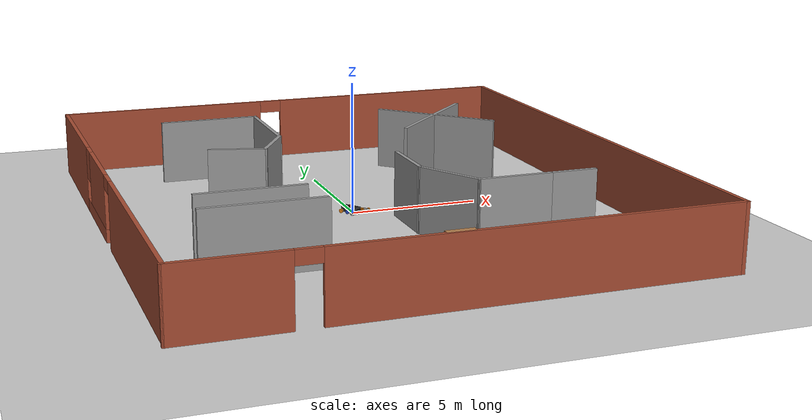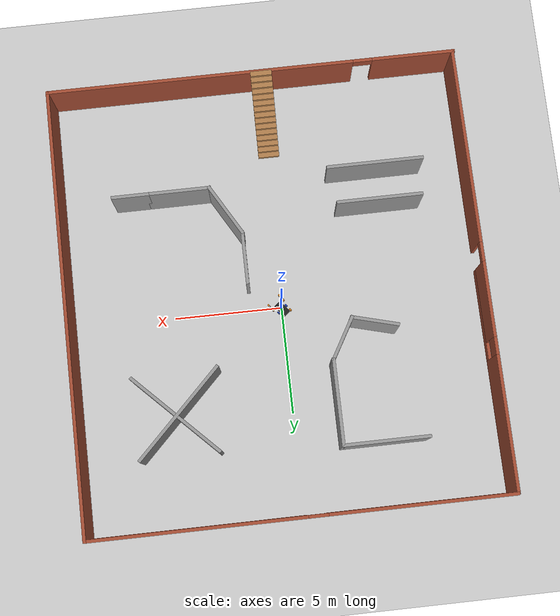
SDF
<sdf version="1.7">
 <world name="default">
  <light name="sun" type="directional">
   <pose>0 0 10 0 -0 0</pose>
   <diffuse>0.8 0.8 0.8 1</diffuse>
   <specular>0.2 0.2 0.2 1</specular>
   <attenuation>
    <range>1000</range>
    <constant>0.9</constant>
    <linear>0.01</linear>
    <quadratic>0.001</quadratic>
   </attenuation>
   <direction>-0.5 0.1 -0.9</direction>
   <spot><inner_angle>0</inner_angle><outer_angle>0</outer_angle><falloff>0</falloff></spot>
  </light>
  <model name="ground_plane">
   <static>1</static>
   <link name="link">
    <collision name="collision">
     <geometry><plane><normal>0 0 1</normal><size>100 100</size></plane></geometry>
     <surface><friction><ode><mu>100</mu><mu2>50</mu2></ode></friction></surface>
    </collision>
    <visual name="visual">
     <cast_shadows>0</cast_shadows>
     <geometry><plane><normal>0 0 1</normal><size>100 100</size></plane></geometry>
     <material>
      <script><uri>file://media/materials/scripts/gazebo.material</uri><name>Gazebo/Grey</name></script>
     </material>
    </visual>
   </link>
  </model>
  <gravity>0 0 -9.8</gravity>
  <magnetic_field>6e-06 2.3e-05 -4.2e-05</magnetic_field>
  <atmosphere type="adiabatic"/>
  <physics type="ode">
   <max_step_size>0.001</max_step_size>
   <real_time_factor>1</real_time_factor>
   <real_time_update_rate>1000</real_time_update_rate>
  </physics>
  <scene><ambient>0.4 0.4 0.4 1</ambient><background>0.7 0.7 0.7 1</background><shadows>1</shadows></scene>
  <spherical_coordinates>
   <surface_model>EARTH_WGS84</surface_model>
   <latitude_deg>0</latitude_deg>
   <longitude_deg>0</longitude_deg>
   <elevation>0</elevation>
   <heading_deg>0</heading_deg>
  </spherical_coordinates>
  <model name="hendbot">
   <link name="base_link">
    <inertial>
     <pose>-0.003669 -0 0.093543 0 -0 0</pose>
     <mass>441.909</mass>
     <inertia>
      <ixx>1.32404</ixx>
      <ixy>-1.29347e-07</ixy>
      <ixz>-0.00999781</ixz>
      <iyy>2.67863</iyy>
      <iyz>1.97052e-07</iyz>
      <izz>3.62614</izz>
     </inertia>
    </inertial>
    <collision name="base_link_fixed_joint_lump__hend_link_collision">
     <pose>-0.33246 0 0 0 -0 0</pose>
     <geometry><mesh><scale>1 1 1</scale><uri>model://hendbot/meshes/base_link.STL</uri></mesh></geometry>
    </collision>
    <collision name="base_link_fixed_joint_lump__LBW_Link_collision_1">
     <pose>-0.28246 0.215 0.035 1.5708 -1.1717 -3.14159</pose>
     <geometry><mesh><scale>1 1 1</scale><uri>model://hendbot/meshes/LBW_Link.STL</uri></mesh></geometry>
     <surface><friction><ode><mu>0.04</mu><mu2>0.04</mu2></ode></friction></surface>
    </collision>
    <collision name="base_link_fixed_joint_lump__LFW_Link_collision_2">
     <pose>0.28245 0.215 0.035103 1.5708 0.76776 3.14159</pose>
     <geometry><mesh><scale>1 1 1</scale><uri>model://hendbot/meshes/LFW_Link.STL</uri></mesh></geometry>
     <surface><friction><ode><mu>0.04</mu><mu2>0.04</mu2></ode></friction></surface>
    </collision>
    <collision name="base_link_fixed_joint_lump__RBW_Link_collision_3">
     <pose>-0.28246 -0.215 0.035 -1.5708 0.11175 -0</pose>
     <geometry><mesh><scale>1 1 1</scale><uri>model://hendbot/meshes/RBW_Link.STL</uri></mesh></geometry>
     <surface><friction><ode><mu>0.04</mu><mu2>0.04</mu2></ode></friction></surface>
    </collision>
    <collision name="base_link_fixed_joint_lump__RFW_Link_collision_4">
     <pose>0.28245 -0.215 0.035103 1.5708 0.34292 3.14159</pose>
     <geometry><mesh><scale>1 1 1</scale><uri>model://hendbot/meshes/RFW_Link.STL</uri></mesh></geometry>
     <surface><friction><ode><mu>0.04</mu><mu2>0.04</mu2></ode></friction></surface>
    </collision>
    <collision name="base_link_fixed_joint_lump__laser_frame_collision_5">
     <pose>-0.01246 0 0.22 0 -0 0</pose>
     <geometry><cylinder><length>0.06</length><radius>0.05</radius></cylinder></geometry>
    </collision>
    <visual name="base_link_fixed_joint_lump__hend_link_visual">
     <pose>-0.33246 0 0 0 -0 0</pose>
     <geometry><mesh><scale>1 1 1</scale><uri>model://hendbot/meshes/base_link.STL</uri></mesh></geometry>
     <material>
      <script><name>Gazebo/Black</name><uri>file://media/materials/scripts/gazebo.material</uri></script>
     </material>
    </visual>
    <visual name="base_link_fixed_joint_lump__LBW_Link_visual_1">
     <pose>-0.28246 0.215 0.035 1.5708 -1.1717 -3.14159</pose>
     <geometry><mesh><scale>1 1 1</scale><uri>model://hendbot/meshes/LBW_Link.STL</uri></mesh></geometry>
     <material>
      <script><name>Gazebo/Orange</name><uri>file://media/materials/scripts/gazebo.material</uri></script>
     </material>
    </visual>
    <visual name="base_link_fixed_joint_lump__LFW_Link_visual_2">
     <pose>0.28245 0.215 0.035103 1.5708 0.76776 3.14159</pose>
     <geometry><mesh><scale>1 1 1</scale><uri>model://hendbot/meshes/LFW_Link.STL</uri></mesh></geometry>
     <material>
      <script><name>Gazebo/Orange</name><uri>file://media/materials/scripts/gazebo.material</uri></script>
     </material>
    </visual>
    <visual name="base_link_fixed_joint_lump__RBW_Link_visual_3">
     <pose>-0.28246 -0.215 0.035 -1.5708 0.11175 -0</pose>
     <geometry><mesh><scale>1 1 1</scale><uri>model://hendbot/meshes/RBW_Link.STL</uri></mesh></geometry>
     <material>
      <script><name>Gazebo/Orange</name><uri>file://media/materials/scripts/gazebo.material</uri></script>
     </material>
    </visual>
    <visual name="base_link_fixed_joint_lump__RFW_Link_visual_4">
     <pose>0.28245 -0.215 0.035103 1.5708 0.34292 3.14159</pose>
     <geometry><mesh><scale>1 1 1</scale><uri>model://hendbot/meshes/RFW_Link.STL</uri></mesh></geometry>
     <material>
      <script><name>Gazebo/Orange</name><uri>file://media/materials/scripts/gazebo.material</uri></script>
     </material>
    </visual>
    <visual name="base_link_fixed_joint_lump__laser_frame_visual_5">
     <pose>-0.01246 0 0.22 0 -0 0</pose>
     <geometry><cylinder><length>0.06</length><radius>0.05</radius></cylinder></geometry>
     <material>
      <script><name>Gazebo/Red</name><uri>file://media/materials/scripts/gazebo.material</uri></script>
     </material>
    </visual>
    <sensor name="laser" type="ray">
     <visualize>0</visualize>
     <update_rate>10</update_rate>
     <ray>
      <scan>
       <horizontal>
        <samples>360</samples>
        <min_angle>-3.14</min_angle>
        <max_angle>3.14</max_angle>
        <resolution>1</resolution>
       </horizontal>
       <vertical><samples>1</samples><min_angle>0</min_angle><max_angle>0</max_angle></vertical>
      </scan>
      <range><min>0.1</min><max>12</max></range>
     </ray>
     <plugin name="laser_controller" filename="libgazebo_ros_ray_sensor.so">
      <ros><argument>~/out:=scan</argument></ros>
      <output_type>sensor_msgs/LaserScan</output_type>
      <frame_name>laser_frame</frame_name>
     </plugin>
     <pose>-0.01246 0 0.22 0 -0 0</pose>
    </sensor>
   </link>
   <joint name="WLBelt_Joint" type="revolute">
    <pose relative_to="base_link">4e-05 0.215 0.035052 1.5708 0.35384 3.14159</pose>
    <parent>base_link</parent>
    <child>WLBelt_Link</child>
    <axis>
     <xyz>0 0 1</xyz>
     <limit><effort>100</effort><velocity>100</velocity><lower>-1e+16</lower><upper>1e+16</upper></limit>
     <dynamics>
      <damping>0.1</damping>
      <friction>0.1</friction>
      <spring_reference>0</spring_reference>
      <spring_stiffness>0</spring_stiffness>
     </dynamics>
    </axis>
   </joint>
   <link name="WLBelt_Link">
    <pose relative_to="WLBelt_Joint">0 0 0 0 -0 0</pose>
    <inertial>
     <pose>6e-06 2e-06 0.03 0 -0 0</pose>
     <mass>2.8302</mass>
     <inertia>
      <ixx>0.00487432</ixx>
      <ixy>1.0842e-19</ixy>
      <ixz>-5.95761e-21</ixz>
      <iyy>0.00487432</iyy>
      <iyz>-3.72125e-22</iyz>
      <izz>0.00805052</izz>
     </inertia>
    </inertial>
    <collision name="WLBelt_Link_collision">
     <geometry><mesh><scale>1 1 1</scale><uri>model://hendbot/meshes/WLBelt_Link.STL</uri></mesh></geometry>
    </collision>
    <visual name="WLBelt_Link_visual">
     <geometry><mesh><scale>1 1 1</scale><uri>model://hendbot/meshes/WLBelt_Link.STL</uri></mesh></geometry>
     <material>
      <script><name>Gazebo/Blue</name><uri>file://media/materials/scripts/gazebo.material</uri></script>
     </material>
    </visual>
   </link>
   <joint name="WRBelt_Joint" type="revolute">
    <pose relative_to="base_link">4e-05 -0.215 0.035052 -1.5708 0.65732 0</pose>
    <parent>base_link</parent>
    <child>WRBelt_Link</child>
    <axis>
     <xyz>0 0 1</xyz>
     <limit><effort>100</effort><velocity>100</velocity><lower>-1e+16</lower><upper>1e+16</upper></limit>
     <dynamics>
      <damping>0.1</damping>
      <friction>0.1</friction>
      <spring_reference>0</spring_reference>
      <spring_stiffness>0</spring_stiffness>
     </dynamics>
    </axis>
   </joint>
   <link name="WRBelt_Link">
    <pose relative_to="WRBelt_Joint">0 0 0 0 -0 0</pose>
    <inertial>
     <pose>-5e-06 4e-06 -0.03 0 -0 0</pose>
     <mass>2.8302</mass>
     <inertia>
      <ixx>0.00487432</ixx>
      <ixy>2.1684e-19</ixy>
      <ixz>9.79617e-36</ixz>
      <iyy>0.00487432</iyy>
      <iyz>7.94184e-36</iyz>
      <izz>0.00805052</izz>
     </inertia>
    </inertial>
    <collision name="WRBelt_Link_collision">
     <geometry><mesh><scale>1 1 1</scale><uri>model://hendbot/meshes/WRBelt_Link.STL</uri></mesh></geometry>
    </collision>
    <visual name="WRBelt_Link_visual">
     <geometry><mesh><scale>1 1 1</scale><uri>model://hendbot/meshes/WRBelt_Link.STL</uri></mesh></geometry>
     <material>
      <script><name>Gazebo/Blue</name><uri>file://media/materials/scripts/gazebo.material</uri></script>
     </material>
    </visual>
   </link>
   <joint name="LFFW_Joint" type="revolute">
    <pose relative_to="base_link">0.28245 0.30998 0.035103 1.5708 -1.005 -3.14159</pose>
    <parent>base_link</parent>
    <child>LFFW_Link</child>
    <axis>
     <xyz>0 0 1</xyz>
     <limit><effort>100</effort><velocity>100</velocity><lower>-1e+16</lower><upper>1e+16</upper></limit>
     <dynamics>
      <damping>0.1</damping>
      <friction>0.1</friction>
      <spring_reference>0</spring_reference>
      <spring_stiffness>0</spring_stiffness>
     </dynamics>
    </axis>
   </joint>
   <link name="LFFW_Link">
    <pose relative_to="LFFW_Joint">0 0 0 0 -0 0</pose>
    <inertial>
     <pose>-0.016199 0.044173 0.030887 0 -0 0</pose>
     <mass>3.50118</mass>
     <inertia>
      <ixx>0.0402368</ixx>
      <ixy>0.0126939</ixy>
      <ixz>-6.84372e-05</ixz>
      <iyy>0.0103212</iyy>
      <iyz>0.00018326</iyz>
      <izz>0.0481955</izz>
     </inertia>
    </inertial>
    <collision name="LFFW_Link_collision">
     <geometry><mesh><scale>1 1 1</scale><uri>model://hendbot/meshes/LFFW_Link.STL</uri></mesh></geometry>
     <surface><friction><ode><mu>0.04</mu><mu2>0.04</mu2></ode></friction></surface>
    </collision>
    <collision name="LFFW_Link_fixed_joint_lump__LF_Link_collision_1">
     <pose>0 0 0 0 -0 1.91705</pose>
     <geometry><mesh><scale>1 1 1</scale><uri>model://hendbot/meshes/LF_Link.STL</uri></mesh></geometry>
    </collision>
    <collision name="LFFW_Link_fixed_joint_lump__LW_Link_collision_2">
     <pose>-0.103425 0.281385 0 0 0 -2.57584</pose>
     <geometry><mesh><scale>1 1 1</scale><uri>model://hendbot/meshes/LW_Link.STL</uri></mesh></geometry>
     <surface><friction><ode><mu>0.04</mu><mu2>0.04</mu2></ode></friction></surface>
    </collision>
    <visual name="LFFW_Link_visual">
     <geometry><mesh><scale>1 1 1</scale><uri>model://hendbot/meshes/LFFW_Link.STL</uri></mesh></geometry>
     <material>
      <script><name>Gazebo/Orange</name><uri>file://media/materials/scripts/gazebo.material</uri></script>
     </material>
    </visual>
    <visual name="LFFW_Link_fixed_joint_lump__LF_Link_visual_1">
     <pose>0 0 0 0 -0 1.91705</pose>
     <geometry><mesh><scale>1 1 1</scale><uri>model://hendbot/meshes/LF_Link.STL</uri></mesh></geometry>
    </visual>
    <visual name="LFFW_Link_fixed_joint_lump__LW_Link_visual_2">
     <pose>-0.103425 0.281385 0 0 0 -2.57584</pose>
     <geometry><mesh><scale>1 1 1</scale><uri>model://hendbot/meshes/LW_Link.STL</uri></mesh></geometry>
     <material>
      <script><name>Gazebo/Orange</name><uri>file://media/materials/scripts/gazebo.material</uri></script>
     </material>
    </visual>
   </link>
   <joint name="RFFW_Joint" type="revolute">
    <pose relative_to="base_link">0.28245 -0.31 0.035103 -1.5708 -0.76747 0</pose>
    <parent>base_link</parent>
    <child>RFFW_Link</child>
    <axis>
     <xyz>0 0 1</xyz>
     <limit><effort>100</effort><velocity>100</velocity><lower>-1e+16</lower><upper>1e+16</upper></limit>
     <dynamics>
      <damping>0.1</damping>
      <friction>0.1</friction>
      <spring_reference>0</spring_reference>
      <spring_stiffness>0</spring_stiffness>
     </dynamics>
    </axis>
   </joint>
   <link name="RFFW_Link">
    <pose relative_to="RFFW_Joint">0 0 0 0 -0 0</pose>
    <inertial>
     <pose>0.041307 0.022524 -0.030886 0 -0 0</pose>
     <mass>3.50118</mass>
     <inertia>
      <ixx>0.0146412</ixx>
      <ixy>-0.0164836</ixy>
      <ixz>-0.000172565</ixz>
      <iyy>0.0359161</iyy>
      <iyz>-9.27813e-05</iyz>
      <izz>0.0481951</izz>
     </inertia>
    </inertial>
    <collision name="RFFW_Link_collision">
     <geometry><mesh><scale>1 1 1</scale><uri>model://hendbot/meshes/RFFW_Link.STL</uri></mesh></geometry>
     <surface><friction><ode><mu>0.04</mu><mu2>0.04</mu2></ode></friction></surface>
    </collision>
    <collision name="RFFW_Link_fixed_joint_lump__RF_Link_collision_1">
     <pose>0 0.01 0 0 -0 0.504452</pose>
     <geometry><mesh><scale>1 1 1</scale><uri>model://hendbot/meshes/RF_Link.STL</uri></mesh></geometry>
    </collision>
    <collision name="RFFW_Link_fixed_joint_lump__RW_Link_collision_2">
     <pose>0.263308 0.143325 0 0 0 -0.803348</pose>
     <geometry><mesh><scale>1 1 1</scale><uri>model://hendbot/meshes/RW_Link.STL</uri></mesh></geometry>
     <surface><friction><ode><mu>0.04</mu><mu2>0.04</mu2></ode></friction></surface>
    </collision>
    <visual name="RFFW_Link_visual">
     <geometry><mesh><scale>1 1 1</scale><uri>model://hendbot/meshes/RFFW_Link.STL</uri></mesh></geometry>
     <material>
      <script><name>Gazebo/Orange</name><uri>file://media/materials/scripts/gazebo.material</uri></script>
     </material>
    </visual>
    <visual name="RFFW_Link_fixed_joint_lump__RF_Link_visual_1">
     <pose>0 0.01 0 0 -0 0.504452</pose>
     <geometry><mesh><scale>1 1 1</scale><uri>model://hendbot/meshes/RF_Link.STL</uri></mesh></geometry>
    </visual>
    <visual name="RFFW_Link_fixed_joint_lump__RW_Link_visual_2">
     <pose>0.263308 0.143325 0 0 0 -0.803348</pose>
     <geometry><mesh><scale>1 1 1</scale><uri>model://hendbot/meshes/RW_Link.STL</uri></mesh></geometry>
     <material>
      <script><name>Gazebo/Orange</name><uri>file://media/materials/scripts/gazebo.material</uri></script>
     </material>
    </visual>
   </link>
   <static>0</static>
   <plugin name="gazebo_ros2_control" filename="libgazebo_ros2_control.so">
    <parameters>/home/hend/henD_ws/install/hendbot/share/hendbot/config/my_controllers.yaml</parameters>
    <parameters>/home/hend/henD_ws/install/hendbot/share/hendbot/config/gaz_ros2_ctl_use_sim.yaml</parameters>
   </plugin>
   <pose>-0.049576 0.071272 0.039743 -0.000243 0.000478 -0.899132</pose>
  </model>
  <model name="model1">
   <pose>0.187595 -0.569101 0 0 -0 0</pose>
   <link name="Stairs_0">
    <visual name="Stairs_0_Visual_0">
     <pose>-0.40837 -6.93393 0.083333 0 -0 0</pose>
     <geometry><box><size>1 0.233333 0.166667</size></box></geometry>
     <material>
      <script><uri>file://media/materials/scripts/gazebo.material</uri><name>Gazebo/Wood</name></script>
      <ambient>1 1 1 1</ambient>
     </material>
     <meta><layer>0</layer></meta>
    </visual>
    <collision name="Stairs_0_Collision_0">
     <geometry><box><size>1 0.233333 0.166667</size></box></geometry>
     <pose>-0.40837 -6.93393 0.083333 0 -0 0</pose>
    </collision>
    <visual name="Stairs_0_Visual_1">
     <pose>-0.40837 -7.16726 0.25 0 -0 0</pose>
     <geometry><box><size>1 0.233333 0.166667</size></box></geometry>
     <material>
      <script><uri>file://media/materials/scripts/gazebo.material</uri><name>Gazebo/Wood</name></script>
      <ambient>1 1 1 1</ambient>
     </material>
     <meta><layer>0</layer></meta>
    </visual>
    <collision name="Stairs_0_Collision_1">
     <geometry><box><size>1 0.233333 0.166667</size></box></geometry>
     <pose>-0.40837 -7.16726 0.25 0 -0 0</pose>
    </collision>
    <visual name="Stairs_0_Visual_2">
     <pose>-0.40837 -7.4006 0.416667 0 -0 0</pose>
     <geometry><box><size>1 0.233333 0.166667</size></box></geometry>
     <material>
      <script><uri>file://media/materials/scripts/gazebo.material</uri><name>Gazebo/Wood</name></script>
      <ambient>1 1 1 1</ambient>
     </material>
     <meta><layer>0</layer></meta>
    </visual>
    <collision name="Stairs_0_Collision_2">
     <geometry><box><size>1 0.233333 0.166667</size></box></geometry>
     <pose>-0.40837 -7.4006 0.416667 0 -0 0</pose>
    </collision>
    <visual name="Stairs_0_Visual_3">
     <pose>-0.40837 -7.63393 0.583333 0 -0 0</pose>
     <geometry><box><size>1 0.233333 0.166667</size></box></geometry>
     <material>
      <script><uri>file://media/materials/scripts/gazebo.material</uri><name>Gazebo/Wood</name></script>
      <ambient>1 1 1 1</ambient>
     </material>
     <meta><layer>0</layer></meta>
    </visual>
    <collision name="Stairs_0_Collision_3">
     <geometry><box><size>1 0.233333 0.166667</size></box></geometry>
     <pose>-0.40837 -7.63393 0.583333 0 -0 0</pose>
    </collision>
    <visual name="Stairs_0_Visual_4">
     <pose>-0.40837 -7.86726 0.75 0 -0 0</pose>
     <geometry><box><size>1 0.233333 0.166667</size></box></geometry>
     <material>
      <script><uri>file://media/materials/scripts/gazebo.material</uri><name>Gazebo/Wood</name></script>
      <ambient>1 1 1 1</ambient>
     </material>
     <meta><layer>0</layer></meta>
    </visual>
    <collision name="Stairs_0_Collision_4">
     <geometry><box><size>1 0.233333 0.166667</size></box></geometry>
     <pose>-0.40837 -7.86726 0.75 0 -0 0</pose>
    </collision>
    <visual name="Stairs_0_Visual_5">
     <pose>-0.40837 -8.1006 0.916667 0 -0 0</pose>
     <geometry><box><size>1 0.233333 0.166667</size></box></geometry>
     <material>
      <script><uri>file://media/materials/scripts/gazebo.material</uri><name>Gazebo/Wood</name></script>
      <ambient>1 1 1 1</ambient>
     </material>
     <meta><layer>0</layer></meta>
    </visual>
    <collision name="Stairs_0_Collision_5">
     <geometry><box><size>1 0.233333 0.166667</size></box></geometry>
     <pose>-0.40837 -8.1006 0.916667 0 -0 0</pose>
    </collision>
    <visual name="Stairs_0_Visual_6">
     <pose>-0.40837 -8.33393 1.08333 0 -0 0</pose>
     <geometry><box><size>1 0.233333 0.166667</size></box></geometry>
     <material>
      <script><uri>file://media/materials/scripts/gazebo.material</uri><name>Gazebo/Wood</name></script>
      <ambient>1 1 1 1</ambient>
     </material>
     <meta><layer>0</layer></meta>
    </visual>
    <collision name="Stairs_0_Collision_6">
     <geometry><box><size>1 0.233333 0.166667</size></box></geometry>
     <pose>-0.40837 -8.33393 1.08333 0 -0 0</pose>
    </collision>
    <visual name="Stairs_0_Visual_7">
     <pose>-0.40837 -8.56726 1.25 0 -0 0</pose>
     <geometry><box><size>1 0.233333 0.166667</size></box></geometry>
     <material>
      <script><uri>file://media/materials/scripts/gazebo.material</uri><name>Gazebo/Wood</name></script>
      <ambient>1 1 1 1</ambient>
     </material>
     <meta><layer>0</layer></meta>
    </visual>
    <collision name="Stairs_0_Collision_7">
     <geometry><box><size>1 0.233333 0.166667</size></box></geometry>
     <pose>-0.40837 -8.56726 1.25 0 -0 0</pose>
    </collision>
    <visual name="Stairs_0_Visual_8">
     <pose>-0.40837 -8.8006 1.41667 0 -0 0</pose>
     <geometry><box><size>1 0.233333 0.166667</size></box></geometry>
     <material>
      <script><uri>file://media/materials/scripts/gazebo.material</uri><name>Gazebo/Wood</name></script>
      <ambient>1 1 1 1</ambient>
     </material>
     <meta><layer>0</layer></meta>
    </visual>
    <collision name="Stairs_0_Collision_8">
     <geometry><box><size>1 0.233333 0.166667</size></box></geometry>
     <pose>-0.40837 -8.8006 1.41667 0 -0 0</pose>
    </collision>
    <visual name="Stairs_0_Visual_9">
     <pose>-0.40837 -9.03393 1.58333 0 -0 0</pose>
     <geometry><box><size>1 0.233333 0.166667</size></box></geometry>
     <material>
      <script><uri>file://media/materials/scripts/gazebo.material</uri><name>Gazebo/Wood</name></script>
      <ambient>1 1 1 1</ambient>
     </material>
     <meta><layer>0</layer></meta>
    </visual>
    <collision name="Stairs_0_Collision_9">
     <geometry><box><size>1 0.233333 0.166667</size></box></geometry>
     <pose>-0.40837 -9.03393 1.58333 0 -0 0</pose>
    </collision>
    <visual name="Stairs_0_Visual_10">
     <pose>-0.40837 -9.26726 1.75 0 -0 0</pose>
     <geometry><box><size>1 0.233333 0.166667</size></box></geometry>
     <material>
      <script><uri>file://media/materials/scripts/gazebo.material</uri><name>Gazebo/Wood</name></script>
      <ambient>1 1 1 1</ambient>
     </material>
     <meta><layer>0</layer></meta>
    </visual>
    <collision name="Stairs_0_Collision_10">
     <geometry><box><size>1 0.233333 0.166667</size></box></geometry>
     <pose>-0.40837 -9.26726 1.75 0 -0 0</pose>
    </collision>
    <visual name="Stairs_0_Visual_11">
     <pose>-0.40837 -9.5006 1.91667 0 -0 0</pose>
     <geometry><box><size>1 0.233333 0.166667</size></box></geometry>
     <material>
      <script><uri>file://media/materials/scripts/gazebo.material</uri><name>Gazebo/Wood</name></script>
      <ambient>1 1 1 1</ambient>
     </material>
     <meta><layer>0</layer></meta>
    </visual>
    <collision name="Stairs_0_Collision_11">
     <geometry><box><size>1 0.233333 0.166667</size></box></geometry>
     <pose>-0.40837 -9.5006 1.91667 0 -0 0</pose>
    </collision>
    <visual name="Stairs_0_Visual_12">
     <pose>-0.40837 -9.73393 2.08333 0 -0 0</pose>
     <geometry><box><size>1 0.233333 0.166667</size></box></geometry>
     <material>
      <script><uri>file://media/materials/scripts/gazebo.material</uri><name>Gazebo/Wood</name></script>
      <ambient>1 1 1 1</ambient>
     </material>
     <meta><layer>0</layer></meta>
    </visual>
    <collision name="Stairs_0_Collision_12">
     <geometry><box><size>1 0.233333 0.166667</size></box></geometry>
     <pose>-0.40837 -9.73393 2.08333 0 -0 0</pose>
    </collision>
    <visual name="Stairs_0_Visual_13">
     <pose>-0.40837 -9.96726 2.25 0 -0 0</pose>
     <geometry><box><size>1 0.233333 0.166667</size></box></geometry>
     <material>
      <script><uri>file://media/materials/scripts/gazebo.material</uri><name>Gazebo/Wood</name></script>
      <ambient>1 1 1 1</ambient>
     </material>
     <meta><layer>0</layer></meta>
    </visual>
    <collision name="Stairs_0_Collision_13">
     <geometry><box><size>1 0.233333 0.166667</size></box></geometry>
     <pose>-0.40837 -9.96726 2.25 0 -0 0</pose>
    </collision>
    <visual name="Stairs_0_Visual_14">
     <pose>-0.40837 -10.2006 2.41667 0 -0 0</pose>
     <geometry><box><size>1 0.233333 0.166667</size></box></geometry>
     <material>
      <script><uri>file://media/materials/scripts/gazebo.material</uri><name>Gazebo/Wood</name></script>
      <ambient>1 1 1 1</ambient>
     </material>
     <meta><layer>0</layer></meta>
    </visual>
    <collision name="Stairs_0_Collision_14">
     <geometry><box><size>1 0.233333 0.166667</size></box></geometry>
     <pose>-0.40837 -10.2006 2.41667 0 -0 0</pose>
    </collision>
   </link>
   <link name="Wall_11">
    <pose>-9.52744 -0.018475 0 0 -0 -1.56352</pose>
    <visual name="Wall_11_Visual_0">
     <pose>-7.25835 0 1.25 0 -0 0</pose>
     <geometry><box><size>6.23329 0.15 2.5</size></box></geometry>
     <material>
      <script><uri>file://media/materials/scripts/gazebo.material</uri><name>Gazebo/Bricks</name></script>
      <ambient>1 1 1 1</ambient>
     </material>
     <meta><layer>0</layer></meta>
    </visual>
    <collision name="Wall_11_Collision_0">
     <geometry><box><size>6.23329 0.15 2.5</size></box></geometry>
     <pose>-7.25835 0 1.25 0 -0 0</pose>
    </collision>
    <visual name="Wall_11_Visual_1">
     <pose>5.71686 0 1.25 0 -0 0</pose>
     <geometry><box><size>9.31628 0.15 2.5</size></box></geometry>
     <material>
      <script><uri>file://media/materials/scripts/gazebo.material</uri><name>Gazebo/Bricks</name></script>
      <ambient>1 1 1 1</ambient>
     </material>
     <meta><layer>0</layer></meta>
    </visual>
    <collision name="Wall_11_Collision_1">
     <geometry><box><size>9.31628 0.15 2.5</size></box></geometry>
     <pose>5.71686 0 1.25 0 -0 0</pose>
    </collision>
    <visual name="Wall_11_Visual_2">
     <pose>-1.99149 0 0.25 0 -0 0</pose>
     <geometry><box><size>4.30043 0.15 0.5</size></box></geometry>
     <material>
      <script><uri>file://media/materials/scripts/gazebo.material</uri><name>Gazebo/Bricks</name></script>
      <ambient>1 1 1 1</ambient>
     </material>
     <meta><layer>0</layer></meta>
    </visual>
    <collision name="Wall_11_Collision_2">
     <geometry><box><size>4.30043 0.15 0.5</size></box></geometry>
     <pose>-1.99149 0 0.25 0 -0 0</pose>
    </collision>
    <visual name="Wall_11_Visual_3">
     <pose>-1.59149 0 1.5 0 -0 0</pose>
     <geometry><box><size>3.50043 0.15 2</size></box></geometry>
     <material>
      <script><uri>file://media/materials/scripts/gazebo.material</uri><name>Gazebo/Bricks</name></script>
      <ambient>1 1 1 1</ambient>
     </material>
     <meta><layer>0</layer></meta>
    </visual>
    <collision name="Wall_11_Collision_3">
     <geometry><box><size>3.50043 0.15 2</size></box></geometry>
     <pose>-1.59149 0 1.5 0 -0 0</pose>
    </collision>
    <visual name="Wall_11_Visual_4">
     <pose>-3.74171 0 1.9 0 -0 0</pose>
     <geometry><box><size>0.8 0.15 1.2</size></box></geometry>
     <material>
      <script><uri>file://media/materials/scripts/gazebo.material</uri><name>Gazebo/Bricks</name></script>
      <ambient>1 1 1 1</ambient>
     </material>
     <meta><layer>0</layer></meta>
    </visual>
    <collision name="Wall_11_Collision_4">
     <geometry><box><size>0.8 0.15 1.2</size></box></geometry>
     <pose>-3.74171 0 1.9 0 -0 0</pose>
    </collision>
    <visual name="Wall_11_Visual_5">
     <pose>0.608723 0 2.25 0 -0 0</pose>
     <geometry><box><size>0.9 0.15 0.5</size></box></geometry>
     <material>
      <script><uri>file://media/materials/scripts/gazebo.material</uri><name>Gazebo/Bricks</name></script>
      <ambient>1 1 1 1</ambient>
     </material>
     <meta><layer>0</layer></meta>
    </visual>
    <collision name="Wall_11_Collision_5">
     <geometry><box><size>0.9 0.15 0.5</size></box></geometry>
     <pose>0.608723 0 2.25 0 -0 0</pose>
    </collision>
   </link>
   <link name="Wall_12">
    <pose>0.05265 -10.3185 0 0 -0 0</pose>
    <visual name="Wall_12_Visual_0">
     <pose>-7.6679 0 1.25 0 -0 0</pose>
     <geometry><box><size>3.9142 0.15 2.5</size></box></geometry>
     <material>
      <script><uri>file://media/materials/scripts/gazebo.material</uri><name>Gazebo/Bricks</name></script>
      <ambient>1 1 1 1</ambient>
     </material>
     <meta><layer>0</layer></meta>
    </visual>
    <collision name="Wall_12_Collision_0">
     <geometry><box><size>3.9142 0.15 2.5</size></box></geometry>
     <pose>-7.6679 0 1.25 0 -0 0</pose>
    </collision>
    <visual name="Wall_12_Visual_1">
     <pose>2.4071 0 1.25 0 -0 0</pose>
     <geometry><box><size>14.4358 0.15 2.5</size></box></geometry>
     <material>
      <script><uri>file://media/materials/scripts/gazebo.material</uri><name>Gazebo/Bricks</name></script>
      <ambient>1 1 1 1</ambient>
     </material>
     <meta><layer>0</layer></meta>
    </visual>
    <collision name="Wall_12_Collision_1">
     <geometry><box><size>14.4358 0.15 2.5</size></box></geometry>
     <pose>2.4071 0 1.25 0 -0 0</pose>
    </collision>
    <visual name="Wall_12_Visual_2">
     <pose>-5.2608 0 2.25 0 -0 0</pose>
     <geometry><box><size>0.9 0.15 0.5</size></box></geometry>
     <material>
      <script><uri>file://media/materials/scripts/gazebo.material</uri><name>Gazebo/Bricks</name></script>
      <ambient>1 1 1 1</ambient>
     </material>
     <meta><layer>0</layer></meta>
    </visual>
    <collision name="Wall_12_Collision_2">
     <geometry><box><size>0.9 0.15 0.5</size></box></geometry>
     <pose>-5.2608 0 2.25 0 -0 0</pose>
    </collision>
   </link>
   <link name="Wall_13">
    <collision name="Wall_13_Collision">
     <geometry><box><size>20.7877 0.15 2.5</size></box></geometry>
     <pose>0 0 1.25 0 -0 0</pose>
    </collision>
    <visual name="Wall_13_Visual">
     <pose>0 0 1.25 0 -0 0</pose>
     <geometry><box><size>20.7877 0.15 2.5</size></box></geometry>
     <material>
      <script><uri>file://media/materials/scripts/gazebo.material</uri><name>Gazebo/Bricks</name></script>
      <ambient>1 1 1 1</ambient>
     </material>
     <meta><layer>0</layer></meta>
    </visual>
    <pose>9.56505 0 0 0 -0 1.57444</pose>
   </link>
   <link name="Wall_14">
    <pose>-0.02255 10.3185 0 0 -0 3.14159</pose>
    <visual name="Wall_14_Visual_0">
     <pose>-4.66516 0 1.25 0 -0 0</pose>
     <geometry><box><size>9.91968 0.15 2.5</size></box></geometry>
     <material>
      <script><uri>file://media/materials/scripts/gazebo.material</uri><name>Gazebo/Bricks</name></script>
      <ambient>1 1 1 1</ambient>
     </material>
     <meta><layer>0</layer></meta>
    </visual>
    <collision name="Wall_14_Collision_0">
     <geometry><box><size>9.91968 0.15 2.5</size></box></geometry>
     <pose>-4.66516 0 1.25 0 -0 0</pose>
    </collision>
    <visual name="Wall_14_Visual_1">
     <pose>5.40984 0 1.25 0 -0 0</pose>
     <geometry><box><size>8.43032 0.15 2.5</size></box></geometry>
     <material>
      <script><uri>file://media/materials/scripts/gazebo.material</uri><name>Gazebo/Bricks</name></script>
      <ambient>1 1 1 1</ambient>
     </material>
     <meta><layer>0</layer></meta>
    </visual>
    <collision name="Wall_14_Collision_1">
     <geometry><box><size>8.43032 0.15 2.5</size></box></geometry>
     <pose>5.40984 0 1.25 0 -0 0</pose>
    </collision>
    <visual name="Wall_14_Visual_2">
     <pose>0.744683 0 2.25 0 -0 0</pose>
     <geometry><box><size>0.9 0.15 0.5</size></box></geometry>
     <material>
      <script><uri>file://media/materials/scripts/gazebo.material</uri><name>Gazebo/Bricks</name></script>
      <ambient>1 1 1 1</ambient>
     </material>
     <meta><layer>0</layer></meta>
    </visual>
    <collision name="Wall_14_Collision_2">
     <geometry><box><size>0.9 0.15 0.5</size></box></geometry>
     <pose>0.744683 0 2.25 0 -0 0</pose>
    </collision>
   </link>
   <link name="Wall_16">
    <collision name="Wall_16_Collision">
     <geometry><box><size>4 0.15 2.5</size></box></geometry>
     <pose>0 0 1.25 0 -0 0</pose>
    </collision>
    <visual name="Wall_16_Visual">
     <pose>0 0 1.25 0 -0 0</pose>
     <geometry><box><size>4 0.15 2.5</size></box></geometry>
     <material>
      <script><uri>file://media/materials/scripts/gazebo.material</uri><name>Gazebo/Grey</name></script>
      <ambient>1 1 1 1</ambient>
     </material>
     <meta><layer>0</layer></meta>
    </visual>
    <pose>-4.13544 7.40208 0 0 -0 0</pose>
   </link>
   <link name="Wall_17">
    <collision name="Wall_17_Collision">
     <geometry><box><size>4 0.15 2.5</size></box></geometry>
     <pose>0 0 1.25 0 -0 0</pose>
    </collision>
    <visual name="Wall_17_Visual">
     <pose>0 0 1.25 0 -0 0</pose>
     <geometry><box><size>4 0.15 2.5</size></box></geometry>
     <material>
      <script><uri>file://media/materials/scripts/gazebo.material</uri><name>Gazebo/Grey</name></script>
      <ambient>1 1 1 1</ambient>
     </material>
     <meta><layer>0</layer></meta>
    </visual>
    <pose>-2.21044 5.47708 0 0 -0 -1.5708</pose>
   </link>
   <link name="Wall_18">
    <collision name="Wall_18_Collision">
     <geometry><box><size>2.25 0.15 2.5</size></box></geometry>
     <pose>0 0 1.25 0 -0 0</pose>
    </collision>
    <visual name="Wall_18_Visual">
     <pose>0 0 1.25 0 -0 0</pose>
     <geometry><box><size>2.25 0.15 2.5</size></box></geometry>
     <material>
      <script><uri>file://media/materials/scripts/gazebo.material</uri><name>Gazebo/Grey</name></script>
      <ambient>1 1 1 1</ambient>
     </material>
     <meta><layer>0</layer></meta>
    </visual>
    <pose>-2.73544 2.64276 0 0 -0 -2.0944</pose>
   </link>
   <link name="Wall_19">
    <collision name="Wall_19_Collision">
     <geometry><box><size>2.25 0.15 2.5</size></box></geometry>
     <pose>0 0 1.25 0 -0 0</pose>
    </collision>
    <visual name="Wall_19_Visual">
     <pose>0 0 1.25 0 -0 0</pose>
     <geometry><box><size>2.25 0.15 2.5</size></box></geometry>
     <material>
      <script><uri>file://media/materials/scripts/gazebo.material</uri><name>Gazebo/Grey</name></script>
      <ambient>1 1 1 1</ambient>
     </material>
     <meta><layer>0</layer></meta>
    </visual>
    <pose>-4.27466 2.00519 0 0 -0 2.87979</pose>
   </link>
   <link name="Wall_21">
    <collision name="Wall_21_Collision">
     <geometry><box><size>2.5 0.15 2.5</size></box></geometry>
     <pose>0 0 1.25 0 -0 0</pose>
    </collision>
    <visual name="Wall_21_Visual">
     <pose>0 0 1.25 0 -0 0</pose>
     <geometry><box><size>2.5 0.15 2.5</size></box></geometry>
     <material>
      <script><uri>file://media/materials/scripts/gazebo.material</uri><name>Gazebo/Grey</name></script>
      <ambient>1 1 1 1</ambient>
     </material>
     <meta><layer>0</layer></meta>
    </visual>
    <pose>1.25137 -1.5333 0 0 -0 -1.5708</pose>
   </link>
   <link name="Wall_22">
    <collision name="Wall_22_Collision">
     <geometry><box><size>2.75 0.15 2.5</size></box></geometry>
     <pose>0 0 1.25 0 -0 0</pose>
    </collision>
    <visual name="Wall_22_Visual">
     <pose>0 0 1.25 0 -0 0</pose>
     <geometry><box><size>2.75 0.15 2.5</size></box></geometry>
     <material>
      <script><uri>file://media/materials/scripts/gazebo.material</uri><name>Gazebo/Grey</name></script>
      <ambient>1 1 1 1</ambient>
     </material>
     <meta><layer>0</layer></meta>
    </visual>
    <pose>1.90136 -3.83413 0 0 -0 -1.0472</pose>
   </link>
   <link name="Wall_23">
    <collision name="Wall_23_Collision">
     <geometry><box><size>3 0.15 2.5</size></box></geometry>
     <pose>0 0 1.25 0 -0 0</pose>
    </collision>
    <visual name="Wall_23_Visual">
     <pose>0 0 1.25 0 -0 0</pose>
     <geometry><box><size>3 0.15 2.5</size></box></geometry>
     <material>
      <script><uri>file://media/materials/scripts/gazebo.material</uri><name>Gazebo/Grey</name></script>
      <ambient>1 1 1 1</ambient>
     </material>
     <meta><layer>0</layer></meta>
    </visual>
    <pose>3.97636 -4.95997 0 0 -0 0</pose>
   </link>
   <link name="Wall_24">
    <collision name="Wall_24_Collision">
     <geometry><box><size>1.75 0.15 2.5</size></box></geometry>
     <pose>0 0 1.25 0 -0 0</pose>
    </collision>
    <visual name="Wall_24_Visual">
     <pose>0 0 1.25 0 -0 0</pose>
     <geometry><box><size>1.75 0.15 2.5</size></box></geometry>
     <material>
      <script><uri>file://media/materials/scripts/gazebo.material</uri><name>Gazebo/Grey</name></script>
      <ambient>1 1 1 1</ambient>
     </material>
     <meta><layer>0</layer></meta>
    </visual>
    <pose>6.20137 -4.95997 0 0 -0 0</pose>
   </link>
   <link name="Wall_27">
    <collision name="Wall_27_Collision">
     <geometry><box><size>4.5 0.15 2.5</size></box></geometry>
     <pose>0 0 1.25 0 -0 0</pose>
    </collision>
    <visual name="Wall_27_Visual">
     <pose>0 0 1.25 0 -0 0</pose>
     <geometry><box><size>4.5 0.15 2.5</size></box></geometry>
     <material>
      <script><uri>file://media/materials/scripts/gazebo.material</uri><name>Gazebo/Grey</name></script>
      <ambient>1 1 1 1</ambient>
     </material>
     <meta><layer>0</layer></meta>
    </visual>
    <pose>-5.18632 -5.33751 0 0 -0 0</pose>
   </link>
   <link name="Wall_29">
    <collision name="Wall_29_Collision">
     <geometry><box><size>4 0.15 2.5</size></box></geometry>
     <pose>0 0 1.25 0 -0 0</pose>
    </collision>
    <visual name="Wall_29_Visual">
     <pose>0 0 1.25 0 -0 0</pose>
     <geometry><box><size>4 0.15 2.5</size></box></geometry>
     <material>
      <script><uri>file://media/materials/scripts/gazebo.material</uri><name>Gazebo/Grey</name></script>
      <ambient>1 1 1 1</ambient>
     </material>
     <meta><layer>0</layer></meta>
    </visual>
    <pose>-5.20426 -3.63291 0 0 -0 3.14159</pose>
   </link>
   <link name="Wall_31">
    <collision name="Wall_31_Collision">
     <geometry><box><size>5.25 0.15 2.5</size></box></geometry>
     <pose>0 0 1.25 0 -0 0</pose>
    </collision>
    <visual name="Wall_31_Visual">
     <pose>0 0 1.25 0 -0 0</pose>
     <geometry><box><size>5.25 0.15 2.5</size></box></geometry>
     <material>
      <script><uri>file://media/materials/scripts/gazebo.material</uri><name>Gazebo/Grey</name></script>
      <ambient>1 1 1 1</ambient>
     </material>
     <meta><layer>0</layer></meta>
    </visual>
    <pose>5.07308 5.2401 0 0 -0 -0.785398</pose>
   </link>
   <link name="Wall_34">
    <collision name="Wall_34_Collision">
     <geometry><box><size>5.5 0.15 2.5</size></box></geometry>
     <pose>0 0 1.25 0 -0 0</pose>
    </collision>
    <visual name="Wall_34_Visual">
     <pose>0 0 1.25 0 -0 0</pose>
     <geometry><box><size>5.5 0.15 2.5</size></box></geometry>
     <material>
      <script><uri>file://media/materials/scripts/gazebo.material</uri><name>Gazebo/Grey</name></script>
      <ambient>1 1 1 1</ambient>
     </material>
     <meta><layer>0</layer></meta>
    </visual>
    <pose>4.92221 5.19657 0 0 -0 -2.35619</pose>
   </link>
   <static>1</static>
  </model>
 </world>
</sdf>
